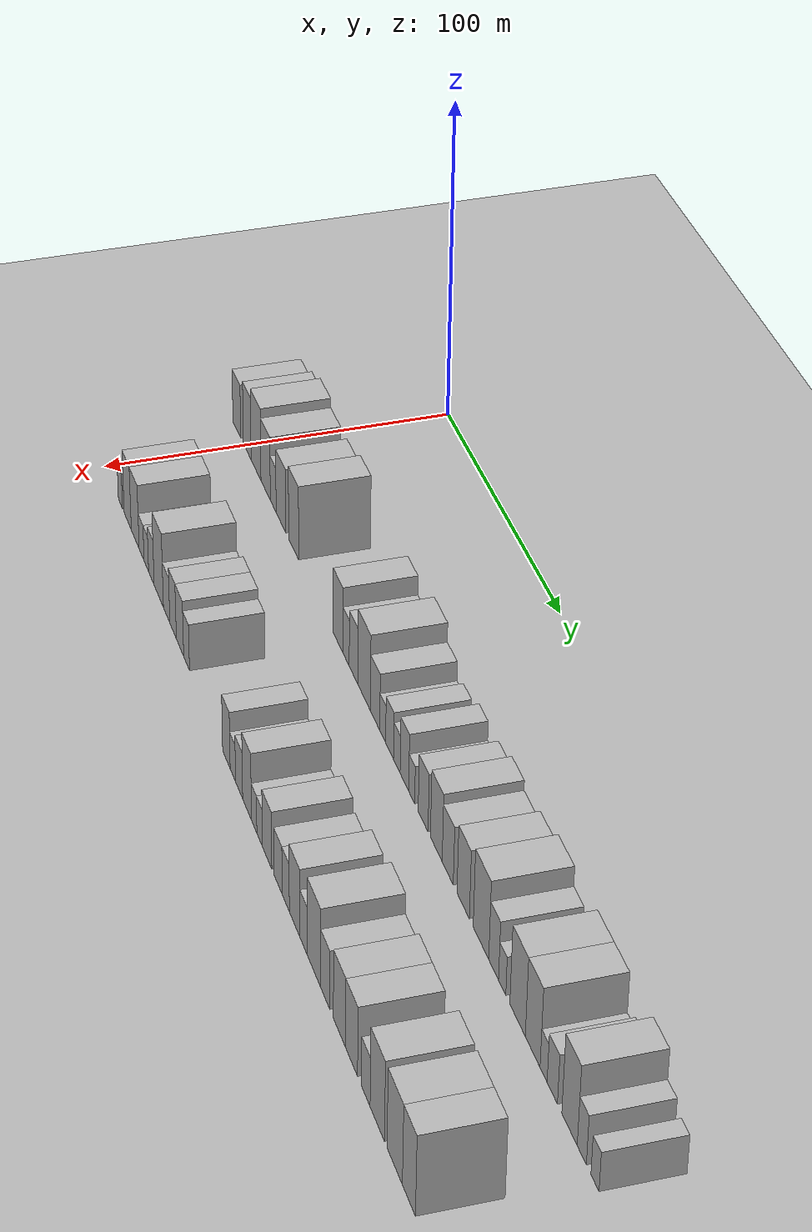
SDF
<sdf version="1.6">
 <world name="default">
  <include><name>ground_plane_1</name><uri>model://HANNAS_ground_plane</uri></include>
  <include>
   <name>ground_plane_2</name>
   <uri>model://HANNAS_ground_plane</uri>
   <pose>100 0 0  0 0 0</pose>
  </include>
  <model name="building_27">
   <static>1</static>
   <pose>50.0000 -7.8816 0 0.000000 0.000000 0.000000</pose>
   <link name="link">
    <pose>0 0 9.00 0 0 0</pose>
    <collision name="collision"><geometry><box><size>20.0000 8.7975 18.0000</size></box></geometry></collision>
    <visual name="visual">
     <cast_shadows>0</cast_shadows>
     <geometry><box><size>20.0000 8.7975 18.0000</size></box></geometry>
     <material>
      <script>
       <uri>model://HANNAS_wall/materials/scripts</uri>
       <uri>model://HANNAS_wall/materials/textures</uri>
       <name>vrc/HANNAS_wall</name>
      </script>
     </material>
    </visual>
   </link>
  </model>
  <model name="building_28">
   <static>1</static>
   <pose>50.0000 3.8579 0 0.000000 0.000000 0.000000</pose>
   <link name="link">
    <pose>0 0 10.50 0 0 0</pose>
    <collision name="collision"><geometry><box><size>20.0000 8.6814 21.0000</size></box></geometry></collision>
    <visual name="visual">
     <cast_shadows>0</cast_shadows>
     <geometry><box><size>20.0000 8.6814 21.0000</size></box></geometry>
     <material>
      <script>
       <uri>model://HANNAS_wall/materials/scripts</uri>
       <uri>model://HANNAS_wall/materials/textures</uri>
       <name>vrc/HANNAS_wall</name>
      </script>
     </material>
    </visual>
   </link>
  </model>
  <model name="building_29">
   <static>1</static>
   <pose>50.0000 13.5751 0 0.000000 0.000000 0.000000</pose>
   <link name="link">
    <pose>0 0 12.00 0 0 0</pose>
    <collision name="collision"><geometry><box><size>20.0000 10.7529 24.0000</size></box></geometry></collision>
    <visual name="visual">
     <cast_shadows>0</cast_shadows>
     <geometry><box><size>20.0000 10.7529 24.0000</size></box></geometry>
     <material>
      <script>
       <uri>model://HANNAS_wall/materials/scripts</uri>
       <uri>model://HANNAS_wall/materials/textures</uri>
       <name>vrc/HANNAS_wall</name>
      </script>
     </material>
    </visual>
   </link>
  </model>
  <model name="building_30">
   <static>1</static>
   <pose>50.0000 24.0050 0 0.000000 0.000000 0.000000</pose>
   <link name="link">
    <pose>0 0 10.50 0 0 0</pose>
    <collision name="collision"><geometry><box><size>20.0000 10.1068 21.0000</size></box></geometry></collision>
    <visual name="visual">
     <cast_shadows>0</cast_shadows>
     <geometry><box><size>20.0000 10.1068 21.0000</size></box></geometry>
     <material>
      <script>
       <uri>model://HANNAS_wall/materials/scripts</uri>
       <uri>model://HANNAS_wall/materials/textures</uri>
       <name>vrc/HANNAS_wall</name>
      </script>
     </material>
    </visual>
   </link>
  </model>
  <model name="building_31">
   <static>1</static>
   <pose>50.0000 32.1459 0 0.000000 0.000000 0.000000</pose>
   <link name="link">
    <pose>0 0 7.50 0 0 0</pose>
    <collision name="collision"><geometry><box><size>20.0000 6.1750 15.0000</size></box></geometry></collision>
    <visual name="visual">
     <cast_shadows>0</cast_shadows>
     <geometry><box><size>20.0000 6.1750 15.0000</size></box></geometry>
     <material>
      <script>
       <uri>model://HANNAS_wall/materials/scripts</uri>
       <uri>model://HANNAS_wall/materials/textures</uri>
       <name>vrc/HANNAS_wall</name>
      </script>
     </material>
    </visual>
   </link>
  </model>
  <model name="building_32">
   <static>1</static>
   <pose>50.0000 40.3316 0 0.000000 0.000000 0.000000</pose>
   <link name="link">
    <pose>0 0 10.50 0 0 0</pose>
    <collision name="collision"><geometry><box><size>20.0000 10.1965 21.0000</size></box></geometry></collision>
    <visual name="visual">
     <cast_shadows>0</cast_shadows>
     <geometry><box><size>20.0000 10.1965 21.0000</size></box></geometry>
     <material>
      <script>
       <uri>model://HANNAS_wall/materials/scripts</uri>
       <uri>model://HANNAS_wall/materials/textures</uri>
       <name>vrc/HANNAS_wall</name>
      </script>
     </material>
    </visual>
   </link>
  </model>
  <model name="building_33">
   <static>1</static>
   <pose>50.0000 53.5483 0 0.000000 0.000000 0.000000</pose>
   <link name="link">
    <pose>0 0 12.00 0 0 0</pose>
    <collision name="collision"><geometry><box><size>20.0000 10.2368 24.0000</size></box></geometry></collision>
    <visual name="visual">
     <cast_shadows>0</cast_shadows>
     <geometry><box><size>20.0000 10.2368 24.0000</size></box></geometry>
     <material>
      <script>
       <uri>model://HANNAS_wall/materials/scripts</uri>
       <uri>model://HANNAS_wall/materials/textures</uri>
       <name>vrc/HANNAS_wall</name>
      </script>
     </material>
    </visual>
   </link>
  </model>
  <model name="building_34">
   <static>1</static>
   <pose>50.0000 97.4799 0 0.000000 0.000000 0.000000</pose>
   <link name="link">
    <pose>0 0 10.50 0 0 0</pose>
    <collision name="collision"><geometry><box><size>20.0000 9.2088 21.0000</size></box></geometry></collision>
    <visual name="visual">
     <cast_shadows>0</cast_shadows>
     <geometry><box><size>20.0000 9.2088 21.0000</size></box></geometry>
     <material>
      <script>
       <uri>model://HANNAS_wall/materials/scripts</uri>
       <uri>model://HANNAS_wall/materials/textures</uri>
       <name>vrc/HANNAS_wall</name>
      </script>
     </material>
    </visual>
   </link>
  </model>
  <model name="building_35">
   <static>1</static>
   <pose>50.0000 105.1145 0 0.000000 0.000000 0.000000</pose>
   <link name="link">
    <pose>0 0 7.50 0 0 0</pose>
    <collision name="collision"><geometry><box><size>20.0000 6.0606 15.0000</size></box></geometry></collision>
    <visual name="visual">
     <cast_shadows>0</cast_shadows>
     <geometry><box><size>20.0000 6.0606 15.0000</size></box></geometry>
     <material>
      <script>
       <uri>model://HANNAS_wall/materials/scripts</uri>
       <uri>model://HANNAS_wall/materials/textures</uri>
       <name>vrc/HANNAS_wall</name>
      </script>
     </material>
    </visual>
   </link>
  </model>
  <model name="building_36">
   <static>1</static>
   <pose>50.0000 112.1290 0 0.000000 0.000000 0.000000</pose>
   <link name="link">
    <pose>0 0 9.00 0 0 0</pose>
    <collision name="collision"><geometry><box><size>20.0000 7.9685 18.0000</size></box></geometry></collision>
    <visual name="visual">
     <cast_shadows>0</cast_shadows>
     <geometry><box><size>20.0000 7.9685 18.0000</size></box></geometry>
     <material>
      <script>
       <uri>model://HANNAS_wall/materials/scripts</uri>
       <uri>model://HANNAS_wall/materials/textures</uri>
       <name>vrc/HANNAS_wall</name>
      </script>
     </material>
    </visual>
   </link>
  </model>
  <model name="building_37">
   <static>1</static>
   <pose>50.0000 121.8683 0 0.000000 0.000000 0.000000</pose>
   <link name="link">
    <pose>0 0 12.00 0 0 0</pose>
    <collision name="collision"><geometry><box><size>20.0000 11.5101 24.0000</size></box></geometry></collision>
    <visual name="visual">
     <cast_shadows>0</cast_shadows>
     <geometry><box><size>20.0000 11.5101 24.0000</size></box></geometry>
     <material>
      <script>
       <uri>model://HANNAS_wall/materials/scripts</uri>
       <uri>model://HANNAS_wall/materials/textures</uri>
       <name>vrc/HANNAS_wall</name>
      </script>
     </material>
    </visual>
   </link>
  </model>
  <model name="building_38">
   <static>1</static>
   <pose>50.0000 131.8711 0 0.000000 0.000000 0.000000</pose>
   <link name="link">
    <pose>0 0 9.00 0 0 0</pose>
    <collision name="collision"><geometry><box><size>20.0000 8.4955 18.0000</size></box></geometry></collision>
    <visual name="visual">
     <cast_shadows>0</cast_shadows>
     <geometry><box><size>20.0000 8.4955 18.0000</size></box></geometry>
     <material>
      <script>
       <uri>model://HANNAS_wall/materials/scripts</uri>
       <uri>model://HANNAS_wall/materials/textures</uri>
       <name>vrc/HANNAS_wall</name>
      </script>
     </material>
    </visual>
   </link>
  </model>
  <model name="building_39">
   <static>1</static>
   <pose>50.0000 138.7568 0 0.000000 0.000000 0.000000</pose>
   <link name="link">
    <pose>0 0 6.00 0 0 0</pose>
    <collision name="collision"><geometry><box><size>20.0000 5.2759 12.0000</size></box></geometry></collision>
    <visual name="visual">
     <cast_shadows>0</cast_shadows>
     <geometry><box><size>20.0000 5.2759 12.0000</size></box></geometry>
     <material>
      <script>
       <uri>model://HANNAS_wall/materials/scripts</uri>
       <uri>model://HANNAS_wall/materials/textures</uri>
       <name>vrc/HANNAS_wall</name>
      </script>
     </material>
    </visual>
   </link>
  </model>
  <model name="building_40">
   <static>1</static>
   <pose>50.0000 144.8671 0 0.000000 0.000000 0.000000</pose>
   <link name="link">
    <pose>0 0 7.50 0 0 0</pose>
    <collision name="collision"><geometry><box><size>20.0000 6.9448 15.0000</size></box></geometry></collision>
    <visual name="visual">
     <cast_shadows>0</cast_shadows>
     <geometry><box><size>20.0000 6.9448 15.0000</size></box></geometry>
     <material>
      <script>
       <uri>model://HANNAS_wall/materials/scripts</uri>
       <uri>model://HANNAS_wall/materials/textures</uri>
       <name>vrc/HANNAS_wall</name>
      </script>
     </material>
    </visual>
   </link>
  </model>
  <model name="building_41">
   <static>1</static>
   <pose>50.0000 151.2323 0 0.000000 0.000000 0.000000</pose>
   <link name="link">
    <pose>0 0 6.00 0 0 0</pose>
    <collision name="collision"><geometry><box><size>20.0000 5.7856 12.0000</size></box></geometry></collision>
    <visual name="visual">
     <cast_shadows>0</cast_shadows>
     <geometry><box><size>20.0000 5.7856 12.0000</size></box></geometry>
     <material>
      <script>
       <uri>model://HANNAS_wall/materials/scripts</uri>
       <uri>model://HANNAS_wall/materials/textures</uri>
       <name>vrc/HANNAS_wall</name>
      </script>
     </material>
    </visual>
   </link>
  </model>
  <model name="building_42">
   <static>1</static>
   <pose>50.0000 157.7852 0 0.000000 0.000000 0.000000</pose>
   <link name="link">
    <pose>0 0 9.00 0 0 0</pose>
    <collision name="collision"><geometry><box><size>20.0000 7.3201 18.0000</size></box></geometry></collision>
    <visual name="visual">
     <cast_shadows>0</cast_shadows>
     <geometry><box><size>20.0000 7.3201 18.0000</size></box></geometry>
     <material>
      <script>
       <uri>model://HANNAS_wall/materials/scripts</uri>
       <uri>model://HANNAS_wall/materials/textures</uri>
       <name>vrc/HANNAS_wall</name>
      </script>
     </material>
    </visual>
   </link>
  </model>
  <model name="building_43">
   <static>1</static>
   <pose>50.0000 164.0114 0 0.000000 0.000000 0.000000</pose>
   <link name="link">
    <pose>0 0 6.00 0 0 0</pose>
    <collision name="collision"><geometry><box><size>20.0000 5.1324 12.0000</size></box></geometry></collision>
    <visual name="visual">
     <cast_shadows>0</cast_shadows>
     <geometry><box><size>20.0000 5.1324 12.0000</size></box></geometry>
     <material>
      <script>
       <uri>model://HANNAS_wall/materials/scripts</uri>
       <uri>model://HANNAS_wall/materials/textures</uri>
       <name>vrc/HANNAS_wall</name>
      </script>
     </material>
    </visual>
   </link>
  </model>
  <model name="building_44">
   <static>1</static>
   <pose>50.0000 173.6840 0 0.000000 0.000000 0.000000</pose>
   <link name="link">
    <pose>0 0 9.00 0 0 0</pose>
    <collision name="collision"><geometry><box><size>20.0000 8.2128 18.0000</size></box></geometry></collision>
    <visual name="visual">
     <cast_shadows>0</cast_shadows>
     <geometry><box><size>20.0000 8.2128 18.0000</size></box></geometry>
     <material>
      <script>
       <uri>model://HANNAS_wall/materials/scripts</uri>
       <uri>model://HANNAS_wall/materials/textures</uri>
       <name>vrc/HANNAS_wall</name>
      </script>
     </material>
    </visual>
   </link>
  </model>
  <model name="building_45">
   <static>1</static>
   <pose>50.0000 184.6107 0 0.000000 0.000000 0.000000</pose>
   <link name="link">
    <pose>0 0 10.50 0 0 0</pose>
    <collision name="collision"><geometry><box><size>20.0000 9.6407 21.0000</size></box></geometry></collision>
    <visual name="visual">
     <cast_shadows>0</cast_shadows>
     <geometry><box><size>20.0000 9.6407 21.0000</size></box></geometry>
     <material>
      <script>
       <uri>model://HANNAS_wall/materials/scripts</uri>
       <uri>model://HANNAS_wall/materials/textures</uri>
       <name>vrc/HANNAS_wall</name>
      </script>
     </material>
    </visual>
   </link>
  </model>
  <model name="building_46">
   <static>1</static>
   <pose>50.0000 193.9039 0 0.000000 0.000000 0.000000</pose>
   <link name="link">
    <pose>0 0 9.00 0 0 0</pose>
    <collision name="collision"><geometry><box><size>20.0000 8.9455 18.0000</size></box></geometry></collision>
    <visual name="visual">
     <cast_shadows>0</cast_shadows>
     <geometry><box><size>20.0000 8.9455 18.0000</size></box></geometry>
     <material>
      <script>
       <uri>model://HANNAS_wall/materials/scripts</uri>
       <uri>model://HANNAS_wall/materials/textures</uri>
       <name>vrc/HANNAS_wall</name>
      </script>
     </material>
    </visual>
   </link>
  </model>
  <model name="building_47">
   <static>1</static>
   <pose>50.0000 206.2515 0 0.000000 0.000000 0.000000</pose>
   <link name="link">
    <pose>0 0 10.50 0 0 0</pose>
    <collision name="collision"><geometry><box><size>20.0000 9.7498 21.0000</size></box></geometry></collision>
    <visual name="visual">
     <cast_shadows>0</cast_shadows>
     <geometry><box><size>20.0000 9.7498 21.0000</size></box></geometry>
     <material>
      <script>
       <uri>model://HANNAS_wall/materials/scripts</uri>
       <uri>model://HANNAS_wall/materials/textures</uri>
       <name>vrc/HANNAS_wall</name>
      </script>
     </material>
    </visual>
   </link>
  </model>
  <model name="building_48">
   <static>1</static>
   <pose>50.0000 220.0855 0 0.000000 0.000000 0.000000</pose>
   <link name="link">
    <pose>0 0 12.00 0 0 0</pose>
    <collision name="collision"><geometry><box><size>20.0000 11.9182 24.0000</size></box></geometry></collision>
    <visual name="visual">
     <cast_shadows>0</cast_shadows>
     <geometry><box><size>20.0000 11.9182 24.0000</size></box></geometry>
     <material>
      <script>
       <uri>model://HANNAS_wall/materials/scripts</uri>
       <uri>model://HANNAS_wall/materials/textures</uri>
       <name>vrc/HANNAS_wall</name>
      </script>
     </material>
    </visual>
   </link>
  </model>
  <model name="building_49">
   <static>1</static>
   <pose>50.0000 229.7519 0 0.000000 0.000000 0.000000</pose>
   <link name="link">
    <pose>0 0 9.00 0 0 0</pose>
    <collision name="collision"><geometry><box><size>20.0000 7.4147 18.0000</size></box></geometry></collision>
    <visual name="visual">
     <cast_shadows>0</cast_shadows>
     <geometry><box><size>20.0000 7.4147 18.0000</size></box></geometry>
     <material>
      <script>
       <uri>model://HANNAS_wall/materials/scripts</uri>
       <uri>model://HANNAS_wall/materials/textures</uri>
       <name>vrc/HANNAS_wall</name>
      </script>
     </material>
    </visual>
   </link>
  </model>
  <model name="building_50">
   <static>1</static>
   <pose>50.0000 236.1665 0 0.000000 0.000000 0.000000</pose>
   <link name="link">
    <pose>0 0 6.00 0 0 0</pose>
    <collision name="collision"><geometry><box><size>20.0000 5.4144 12.0000</size></box></geometry></collision>
    <visual name="visual">
     <cast_shadows>0</cast_shadows>
     <geometry><box><size>20.0000 5.4144 12.0000</size></box></geometry>
     <material>
      <script>
       <uri>model://HANNAS_wall/materials/scripts</uri>
       <uri>model://HANNAS_wall/materials/textures</uri>
       <name>vrc/HANNAS_wall</name>
      </script>
     </material>
    </visual>
   </link>
  </model>
  <model name="building_51">
   <static>1</static>
   <pose>50.0000 247.5233 0 0.000000 0.000000 0.000000</pose>
   <link name="link">
    <pose>0 0 12.00 0 0 0</pose>
    <collision name="collision"><geometry><box><size>20.0000 11.2993 24.0000</size></box></geometry></collision>
    <visual name="visual">
     <cast_shadows>0</cast_shadows>
     <geometry><box><size>20.0000 11.2993 24.0000</size></box></geometry>
     <material>
      <script>
       <uri>model://HANNAS_wall/materials/scripts</uri>
       <uri>model://HANNAS_wall/materials/textures</uri>
       <name>vrc/HANNAS_wall</name>
      </script>
     </material>
    </visual>
   </link>
  </model>
  <model name="building_52">
   <static>1</static>
   <pose>50.0000 258.4400 0 0.000000 0.000000 0.000000</pose>
   <link name="link">
    <pose>0 0 12.00 0 0 0</pose>
    <collision name="collision"><geometry><box><size>20.0000 10.5341 24.0000</size></box></geometry></collision>
    <visual name="visual">
     <cast_shadows>0</cast_shadows>
     <geometry><box><size>20.0000 10.5341 24.0000</size></box></geometry>
     <material>
      <script>
       <uri>model://HANNAS_wall/materials/scripts</uri>
       <uri>model://HANNAS_wall/materials/textures</uri>
       <name>vrc/HANNAS_wall</name>
      </script>
     </material>
    </visual>
   </link>
  </model>
  <model name="building_53">
   <static>1</static>
   <pose>50.0000 266.1904 0 0.000000 0.000000 0.000000</pose>
   <link name="link">
    <pose>0 0 6.00 0 0 0</pose>
    <collision name="collision"><geometry><box><size>20.0000 4.9665 12.0000</size></box></geometry></collision>
    <visual name="visual">
     <cast_shadows>0</cast_shadows>
     <geometry><box><size>20.0000 4.9665 12.0000</size></box></geometry>
     <material>
      <script>
       <uri>model://HANNAS_wall/materials/scripts</uri>
       <uri>model://HANNAS_wall/materials/textures</uri>
       <name>vrc/HANNAS_wall</name>
      </script>
     </material>
    </visual>
   </link>
  </model>
  <model name="building_54">
   <static>1</static>
   <pose>50.0000 272.2597 0 0.000000 0.000000 0.000000</pose>
   <link name="link">
    <pose>0 0 7.50 0 0 0</pose>
    <collision name="collision"><geometry><box><size>20.0000 7.1720 15.0000</size></box></geometry></collision>
    <visual name="visual">
     <cast_shadows>0</cast_shadows>
     <geometry><box><size>20.0000 7.1720 15.0000</size></box></geometry>
     <material>
      <script>
       <uri>model://HANNAS_wall/materials/scripts</uri>
       <uri>model://HANNAS_wall/materials/textures</uri>
       <name>vrc/HANNAS_wall</name>
      </script>
     </material>
    </visual>
   </link>
  </model>
  <model name="building_55">
   <static>1</static>
   <pose>50.0000 284.0848 0 0.000000 0.000000 0.000000</pose>
   <link name="link">
    <pose>0 0 12.00 0 0 0</pose>
    <collision name="collision"><geometry><box><size>20.0000 10.4783 24.0000</size></box></geometry></collision>
    <visual name="visual">
     <cast_shadows>0</cast_shadows>
     <geometry><box><size>20.0000 10.4783 24.0000</size></box></geometry>
     <material>
      <script>
       <uri>model://HANNAS_wall/materials/scripts</uri>
       <uri>model://HANNAS_wall/materials/textures</uri>
       <name>vrc/HANNAS_wall</name>
      </script>
     </material>
    </visual>
   </link>
  </model>
  <model name="building_56">
   <static>1</static>
   <pose>50.0000 292.3729 0 0.000000 0.000000 0.000000</pose>
   <link name="link">
    <pose>0 0 7.50 0 0 0</pose>
    <collision name="collision"><geometry><box><size>20.0000 6.0980 15.0000</size></box></geometry></collision>
    <visual name="visual">
     <cast_shadows>0</cast_shadows>
     <geometry><box><size>20.0000 6.0980 15.0000</size></box></geometry>
     <material>
      <script>
       <uri>model://HANNAS_wall/materials/scripts</uri>
       <uri>model://HANNAS_wall/materials/textures</uri>
       <name>vrc/HANNAS_wall</name>
      </script>
     </material>
    </visual>
   </link>
  </model>
  <model name="building_57">
   <static>1</static>
   <pose>50.0000 301.0905 0 0.000000 0.000000 0.000000</pose>
   <link name="link">
    <pose>0 0 6.00 0 0 0</pose>
    <collision name="collision"><geometry><box><size>20.0000 5.3371 12.0000</size></box></geometry></collision>
    <visual name="visual">
     <cast_shadows>0</cast_shadows>
     <geometry><box><size>20.0000 5.3371 12.0000</size></box></geometry>
     <material>
      <script>
       <uri>model://HANNAS_wall/materials/scripts</uri>
       <uri>model://HANNAS_wall/materials/textures</uri>
       <name>vrc/HANNAS_wall</name>
      </script>
     </material>
    </visual>
   </link>
  </model>
  <model name="building_93">
   <static>1</static>
   <pose>90.0000 19.8070 0 0.000000 0.000000 0.000000</pose>
   <link name="link">
    <pose>0 0 6.00 0 0 0</pose>
    <collision name="collision"><geometry><box><size>20.0000 5.0939 12.0000</size></box></geometry></collision>
    <visual name="visual">
     <cast_shadows>0</cast_shadows>
     <geometry><box><size>20.0000 5.0939 12.0000</size></box></geometry>
     <material>
      <script>
       <uri>model://HANNAS_wall/materials/scripts</uri>
       <uri>model://HANNAS_wall/materials/textures</uri>
       <name>vrc/HANNAS_wall</name>
      </script>
     </material>
    </visual>
   </link>
  </model>
  <model name="building_94">
   <static>1</static>
   <pose>90.0000 28.6497 0 0.000000 0.000000 0.000000</pose>
   <link name="link">
    <pose>0 0 10.50 0 0 0</pose>
    <collision name="collision"><geometry><box><size>20.0000 8.5916 21.0000</size></box></geometry></collision>
    <visual name="visual">
     <cast_shadows>0</cast_shadows>
     <geometry><box><size>20.0000 8.5916 21.0000</size></box></geometry>
     <material>
      <script>
       <uri>model://HANNAS_wall/materials/scripts</uri>
       <uri>model://HANNAS_wall/materials/textures</uri>
       <name>vrc/HANNAS_wall</name>
      </script>
     </material>
    </visual>
   </link>
  </model>
  <model name="building_95">
   <static>1</static>
   <pose>90.0000 37.6265 0 0.000000 0.000000 0.000000</pose>
   <link name="link">
    <pose>0 0 10.50 0 0 0</pose>
    <collision name="collision"><geometry><box><size>20.0000 9.3620 21.0000</size></box></geometry></collision>
    <visual name="visual">
     <cast_shadows>0</cast_shadows>
     <geometry><box><size>20.0000 9.3620 21.0000</size></box></geometry>
     <material>
      <script>
       <uri>model://HANNAS_wall/materials/scripts</uri>
       <uri>model://HANNAS_wall/materials/textures</uri>
       <name>vrc/HANNAS_wall</name>
      </script>
     </material>
    </visual>
   </link>
  </model>
  <model name="building_96">
   <static>1</static>
   <pose>90.0000 45.2071 0 0.000000 0.000000 0.000000</pose>
   <link name="link">
    <pose>0 0 6.00 0 0 0</pose>
    <collision name="collision"><geometry><box><size>20.0000 5.7991 12.0000</size></box></geometry></collision>
    <visual name="visual">
     <cast_shadows>0</cast_shadows>
     <geometry><box><size>20.0000 5.7991 12.0000</size></box></geometry>
     <material>
      <script>
       <uri>model://HANNAS_wall/materials/scripts</uri>
       <uri>model://HANNAS_wall/materials/textures</uri>
       <name>vrc/HANNAS_wall</name>
      </script>
     </material>
    </visual>
   </link>
  </model>
  <model name="building_97">
   <static>1</static>
   <pose>90.0000 50.7437 0 0.000000 0.000000 0.000000</pose>
   <link name="link">
    <pose>0 0 6.00 0 0 0</pose>
    <collision name="collision"><geometry><box><size>20.0000 5.2741 12.0000</size></box></geometry></collision>
    <visual name="visual">
     <cast_shadows>0</cast_shadows>
     <geometry><box><size>20.0000 5.2741 12.0000</size></box></geometry>
     <material>
      <script>
       <uri>model://HANNAS_wall/materials/scripts</uri>
       <uri>model://HANNAS_wall/materials/textures</uri>
       <name>vrc/HANNAS_wall</name>
      </script>
     </material>
    </visual>
   </link>
  </model>
  <model name="building_98">
   <static>1</static>
   <pose>90.0000 56.6018 0 0.000000 0.000000 0.000000</pose>
   <link name="link">
    <pose>0 0 7.50 0 0 0</pose>
    <collision name="collision"><geometry><box><size>20.0000 6.4421 15.0000</size></box></geometry></collision>
    <visual name="visual">
     <cast_shadows>0</cast_shadows>
     <geometry><box><size>20.0000 6.4421 15.0000</size></box></geometry>
     <material>
      <script>
       <uri>model://HANNAS_wall/materials/scripts</uri>
       <uri>model://HANNAS_wall/materials/textures</uri>
       <name>vrc/HANNAS_wall</name>
      </script>
     </material>
    </visual>
   </link>
  </model>
  <model name="building_99">
   <static>1</static>
   <pose>90.0000 65.1046 0 0.000000 0.000000 0.000000</pose>
   <link name="link">
    <pose>0 0 12.00 0 0 0</pose>
    <collision name="collision"><geometry><box><size>20.0000 10.5635 24.0000</size></box></geometry></collision>
    <visual name="visual">
     <cast_shadows>0</cast_shadows>
     <geometry><box><size>20.0000 10.5635 24.0000</size></box></geometry>
     <material>
      <script>
       <uri>model://HANNAS_wall/materials/scripts</uri>
       <uri>model://HANNAS_wall/materials/textures</uri>
       <name>vrc/HANNAS_wall</name>
      </script>
     </material>
    </visual>
   </link>
  </model>
  <model name="building_100">
   <static>1</static>
   <pose>90.0000 73.9762 0 0.000000 0.000000 0.000000</pose>
   <link name="link">
    <pose>0 0 7.50 0 0 0</pose>
    <collision name="collision"><geometry><box><size>20.0000 7.1796 15.0000</size></box></geometry></collision>
    <visual name="visual">
     <cast_shadows>0</cast_shadows>
     <geometry><box><size>20.0000 7.1796 15.0000</size></box></geometry>
     <material>
      <script>
       <uri>model://HANNAS_wall/materials/scripts</uri>
       <uri>model://HANNAS_wall/materials/textures</uri>
       <name>vrc/HANNAS_wall</name>
      </script>
     </material>
    </visual>
   </link>
  </model>
  <model name="building_101">
   <static>1</static>
   <pose>90.0000 81.1669 0 0.000000 0.000000 0.000000</pose>
   <link name="link">
    <pose>0 0 9.00 0 0 0</pose>
    <collision name="collision"><geometry><box><size>20.0000 7.2018 18.0000</size></box></geometry></collision>
    <visual name="visual">
     <cast_shadows>0</cast_shadows>
     <geometry><box><size>20.0000 7.2018 18.0000</size></box></geometry>
     <material>
      <script>
       <uri>model://HANNAS_wall/materials/scripts</uri>
       <uri>model://HANNAS_wall/materials/textures</uri>
       <name>vrc/HANNAS_wall</name>
      </script>
     </material>
    </visual>
   </link>
  </model>
  <model name="building_102">
   <static>1</static>
   <pose>90.0000 88.7827 0 0.000000 0.000000 0.000000</pose>
   <link name="link">
    <pose>0 0 9.00 0 0 0</pose>
    <collision name="collision"><geometry><box><size>20.0000 8.0298 18.0000</size></box></geometry></collision>
    <visual name="visual">
     <cast_shadows>0</cast_shadows>
     <geometry><box><size>20.0000 8.0298 18.0000</size></box></geometry>
     <material>
      <script>
       <uri>model://HANNAS_wall/materials/scripts</uri>
       <uri>model://HANNAS_wall/materials/textures</uri>
       <name>vrc/HANNAS_wall</name>
      </script>
     </material>
    </visual>
   </link>
  </model>
  <model name="building_103">
   <static>1</static>
   <pose>90.0000 95.9546 0 0.000000 0.000000 0.000000</pose>
   <link name="link">
    <pose>0 0 7.50 0 0 0</pose>
    <collision name="collision"><geometry><box><size>20.0000 6.3139 15.0000</size></box></geometry></collision>
    <visual name="visual">
     <cast_shadows>0</cast_shadows>
     <geometry><box><size>20.0000 6.3139 15.0000</size></box></geometry>
     <material>
      <script>
       <uri>model://HANNAS_wall/materials/scripts</uri>
       <uri>model://HANNAS_wall/materials/textures</uri>
       <name>vrc/HANNAS_wall</name>
      </script>
     </material>
    </visual>
   </link>
  </model>
  <model name="building_104">
   <static>1</static>
   <pose>90.0000 137.4389 0 0.000000 0.000000 0.000000</pose>
   <link name="link">
    <pose>0 0 9.00 0 0 0</pose>
    <collision name="collision"><geometry><box><size>20.0000 7.5516 18.0000</size></box></geometry></collision>
    <visual name="visual">
     <cast_shadows>0</cast_shadows>
     <geometry><box><size>20.0000 7.5516 18.0000</size></box></geometry>
     <material>
      <script>
       <uri>model://HANNAS_wall/materials/scripts</uri>
       <uri>model://HANNAS_wall/materials/textures</uri>
       <name>vrc/HANNAS_wall</name>
      </script>
     </material>
    </visual>
   </link>
  </model>
  <model name="building_105">
   <static>1</static>
   <pose>90.0000 143.9240 0 0.000000 0.000000 0.000000</pose>
   <link name="link">
    <pose>0 0 6.00 0 0 0</pose>
    <collision name="collision"><geometry><box><size>20.0000 5.4185 12.0000</size></box></geometry></collision>
    <visual name="visual">
     <cast_shadows>0</cast_shadows>
     <geometry><box><size>20.0000 5.4185 12.0000</size></box></geometry>
     <material>
      <script>
       <uri>model://HANNAS_wall/materials/scripts</uri>
       <uri>model://HANNAS_wall/materials/textures</uri>
       <name>vrc/HANNAS_wall</name>
      </script>
     </material>
    </visual>
   </link>
  </model>
  <model name="building_106">
   <static>1</static>
   <pose>90.0000 150.1051 0 0.000000 0.000000 0.000000</pose>
   <link name="link">
    <pose>0 0 7.50 0 0 0</pose>
    <collision name="collision"><geometry><box><size>20.0000 6.9438 15.0000</size></box></geometry></collision>
    <visual name="visual">
     <cast_shadows>0</cast_shadows>
     <geometry><box><size>20.0000 6.9438 15.0000</size></box></geometry>
     <material>
      <script>
       <uri>model://HANNAS_wall/materials/scripts</uri>
       <uri>model://HANNAS_wall/materials/textures</uri>
       <name>vrc/HANNAS_wall</name>
      </script>
     </material>
    </visual>
   </link>
  </model>
  <model name="building_107">
   <static>1</static>
   <pose>90.0000 157.8652 0 0.000000 0.000000 0.000000</pose>
   <link name="link">
    <pose>0 0 10.50 0 0 0</pose>
    <collision name="collision"><geometry><box><size>20.0000 8.5762 21.0000</size></box></geometry></collision>
    <visual name="visual">
     <cast_shadows>0</cast_shadows>
     <geometry><box><size>20.0000 8.5762 21.0000</size></box></geometry>
     <material>
      <script>
       <uri>model://HANNAS_wall/materials/scripts</uri>
       <uri>model://HANNAS_wall/materials/textures</uri>
       <name>vrc/HANNAS_wall</name>
      </script>
     </material>
    </visual>
   </link>
  </model>
  <model name="building_108">
   <static>1</static>
   <pose>90.0000 164.7117 0 0.000000 0.000000 0.000000</pose>
   <link name="link">
    <pose>0 0 6.00 0 0 0</pose>
    <collision name="collision"><geometry><box><size>20.0000 5.1168 12.0000</size></box></geometry></collision>
    <visual name="visual">
     <cast_shadows>0</cast_shadows>
     <geometry><box><size>20.0000 5.1168 12.0000</size></box></geometry>
     <material>
      <script>
       <uri>model://HANNAS_wall/materials/scripts</uri>
       <uri>model://HANNAS_wall/materials/textures</uri>
       <name>vrc/HANNAS_wall</name>
      </script>
     </material>
    </visual>
   </link>
  </model>
  <model name="building_109">
   <static>1</static>
   <pose>90.0000 169.8876 0 0.000000 0.000000 0.000000</pose>
   <link name="link">
    <pose>0 0 6.00 0 0 0</pose>
    <collision name="collision"><geometry><box><size>20.0000 5.2351 12.0000</size></box></geometry></collision>
    <visual name="visual">
     <cast_shadows>0</cast_shadows>
     <geometry><box><size>20.0000 5.2351 12.0000</size></box></geometry>
     <material>
      <script>
       <uri>model://HANNAS_wall/materials/scripts</uri>
       <uri>model://HANNAS_wall/materials/textures</uri>
       <name>vrc/HANNAS_wall</name>
      </script>
     </material>
    </visual>
   </link>
  </model>
  <model name="building_110">
   <static>1</static>
   <pose>90.0000 176.9263 0 0.000000 0.000000 0.000000</pose>
   <link name="link">
    <pose>0 0 9.00 0 0 0</pose>
    <collision name="collision"><geometry><box><size>20.0000 8.8425 18.0000</size></box></geometry></collision>
    <visual name="visual">
     <cast_shadows>0</cast_shadows>
     <geometry><box><size>20.0000 8.8425 18.0000</size></box></geometry>
     <material>
      <script>
       <uri>model://HANNAS_wall/materials/scripts</uri>
       <uri>model://HANNAS_wall/materials/textures</uri>
       <name>vrc/HANNAS_wall</name>
      </script>
     </material>
    </visual>
   </link>
  </model>
  <model name="building_111">
   <static>1</static>
   <pose>90.0000 187.0968 0 0.000000 0.000000 0.000000</pose>
   <link name="link">
    <pose>0 0 7.50 0 0 0</pose>
    <collision name="collision"><geometry><box><size>20.0000 7.4985 15.0000</size></box></geometry></collision>
    <visual name="visual">
     <cast_shadows>0</cast_shadows>
     <geometry><box><size>20.0000 7.4985 15.0000</size></box></geometry>
     <material>
      <script>
       <uri>model://HANNAS_wall/materials/scripts</uri>
       <uri>model://HANNAS_wall/materials/textures</uri>
       <name>vrc/HANNAS_wall</name>
      </script>
     </material>
    </visual>
   </link>
  </model>
  <model name="building_112">
   <static>1</static>
   <pose>90.0000 194.1438 0 0.000000 0.000000 0.000000</pose>
   <link name="link">
    <pose>0 0 7.50 0 0 0</pose>
    <collision name="collision"><geometry><box><size>20.0000 6.5956 15.0000</size></box></geometry></collision>
    <visual name="visual">
     <cast_shadows>0</cast_shadows>
     <geometry><box><size>20.0000 6.5956 15.0000</size></box></geometry>
     <material>
      <script>
       <uri>model://HANNAS_wall/materials/scripts</uri>
       <uri>model://HANNAS_wall/materials/textures</uri>
       <name>vrc/HANNAS_wall</name>
      </script>
     </material>
    </visual>
   </link>
  </model>
  <model name="building_113">
   <static>1</static>
   <pose>90.0000 202.2018 0 0.000000 0.000000 0.000000</pose>
   <link name="link">
    <pose>0 0 10.50 0 0 0</pose>
    <collision name="collision"><geometry><box><size>20.0000 9.5205 21.0000</size></box></geometry></collision>
    <visual name="visual">
     <cast_shadows>0</cast_shadows>
     <geometry><box><size>20.0000 9.5205 21.0000</size></box></geometry>
     <material>
      <script>
       <uri>model://HANNAS_wall/materials/scripts</uri>
       <uri>model://HANNAS_wall/materials/textures</uri>
       <name>vrc/HANNAS_wall</name>
      </script>
     </material>
    </visual>
   </link>
  </model>
  <model name="building_114">
   <static>1</static>
   <pose>90.0000 210.1968 0 0.000000 0.000000 0.000000</pose>
   <link name="link">
    <pose>0 0 7.50 0 0 0</pose>
    <collision name="collision"><geometry><box><size>20.0000 6.4695 15.0000</size></box></geometry></collision>
    <visual name="visual">
     <cast_shadows>0</cast_shadows>
     <geometry><box><size>20.0000 6.4695 15.0000</size></box></geometry>
     <material>
      <script>
       <uri>model://HANNAS_wall/materials/scripts</uri>
       <uri>model://HANNAS_wall/materials/textures</uri>
       <name>vrc/HANNAS_wall</name>
      </script>
     </material>
    </visual>
   </link>
  </model>
  <model name="building_115">
   <static>1</static>
   <pose>90.0000 219.1958 0 0.000000 0.000000 0.000000</pose>
   <link name="link">
    <pose>0 0 12.00 0 0 0</pose>
    <collision name="collision"><geometry><box><size>20.0000 11.5285 24.0000</size></box></geometry></collision>
    <visual name="visual">
     <cast_shadows>0</cast_shadows>
     <geometry><box><size>20.0000 11.5285 24.0000</size></box></geometry>
     <material>
      <script>
       <uri>model://HANNAS_wall/materials/scripts</uri>
       <uri>model://HANNAS_wall/materials/textures</uri>
       <name>vrc/HANNAS_wall</name>
      </script>
     </material>
    </visual>
   </link>
  </model>
  <model name="building_116">
   <static>1</static>
   <pose>90.0000 228.8506 0 0.000000 0.000000 0.000000</pose>
   <link name="link">
    <pose>0 0 9.00 0 0 0</pose>
    <collision name="collision"><geometry><box><size>20.0000 7.7811 18.0000</size></box></geometry></collision>
    <visual name="visual">
     <cast_shadows>0</cast_shadows>
     <geometry><box><size>20.0000 7.7811 18.0000</size></box></geometry>
     <material>
      <script>
       <uri>model://HANNAS_wall/materials/scripts</uri>
       <uri>model://HANNAS_wall/materials/textures</uri>
       <name>vrc/HANNAS_wall</name>
      </script>
     </material>
    </visual>
   </link>
  </model>
  <model name="building_117">
   <static>1</static>
   <pose>90.0000 240.7704 0 0.000000 0.000000 0.000000</pose>
   <link name="link">
    <pose>0 0 10.50 0 0 0</pose>
    <collision name="collision"><geometry><box><size>20.0000 10.0586 21.0000</size></box></geometry></collision>
    <visual name="visual">
     <cast_shadows>0</cast_shadows>
     <geometry><box><size>20.0000 10.0586 21.0000</size></box></geometry>
     <material>
      <script>
       <uri>model://HANNAS_wall/materials/scripts</uri>
       <uri>model://HANNAS_wall/materials/textures</uri>
       <name>vrc/HANNAS_wall</name>
      </script>
     </material>
    </visual>
   </link>
  </model>
  <model name="building_118">
   <static>1</static>
   <pose>90.0000 250.6993 0 0.000000 0.000000 0.000000</pose>
   <link name="link">
    <pose>0 0 10.50 0 0 0</pose>
    <collision name="collision"><geometry><box><size>20.0000 9.7991 21.0000</size></box></geometry></collision>
    <visual name="visual">
     <cast_shadows>0</cast_shadows>
     <geometry><box><size>20.0000 9.7991 21.0000</size></box></geometry>
     <material>
      <script>
       <uri>model://HANNAS_wall/materials/scripts</uri>
       <uri>model://HANNAS_wall/materials/textures</uri>
       <name>vrc/HANNAS_wall</name>
      </script>
     </material>
    </visual>
   </link>
  </model>
  <model name="building_119">
   <static>1</static>
   <pose>90.0000 262.1246 0 0.000000 0.000000 0.000000</pose>
   <link name="link">
    <pose>0 0 7.50 0 0 0</pose>
    <collision name="collision"><geometry><box><size>20.0000 7.0516 15.0000</size></box></geometry></collision>
    <visual name="visual">
     <cast_shadows>0</cast_shadows>
     <geometry><box><size>20.0000 7.0516 15.0000</size></box></geometry>
     <material>
      <script>
       <uri>model://HANNAS_wall/materials/scripts</uri>
       <uri>model://HANNAS_wall/materials/textures</uri>
       <name>vrc/HANNAS_wall</name>
      </script>
     </material>
    </visual>
   </link>
  </model>
  <model name="building_120">
   <static>1</static>
   <pose>90.0000 271.2500 0 0.000000 0.000000 0.000000</pose>
   <link name="link">
    <pose>0 0 12.00 0 0 0</pose>
    <collision name="collision"><geometry><box><size>20.0000 11.1990 24.0000</size></box></geometry></collision>
    <visual name="visual">
     <cast_shadows>0</cast_shadows>
     <geometry><box><size>20.0000 11.1990 24.0000</size></box></geometry>
     <material>
      <script>
       <uri>model://HANNAS_wall/materials/scripts</uri>
       <uri>model://HANNAS_wall/materials/textures</uri>
       <name>vrc/HANNAS_wall</name>
      </script>
     </material>
    </visual>
   </link>
  </model>
  <model name="building_121">
   <static>1</static>
   <pose>90.0000 284.7036 0 0.000000 0.000000 0.000000</pose>
   <link name="link">
    <pose>0 0 12.00 0 0 0</pose>
    <collision name="collision"><geometry><box><size>20.0000 11.7083 24.0000</size></box></geometry></collision>
    <visual name="visual">
     <cast_shadows>0</cast_shadows>
     <geometry><box><size>20.0000 11.7083 24.0000</size></box></geometry>
     <material>
      <script>
       <uri>model://HANNAS_wall/materials/scripts</uri>
       <uri>model://HANNAS_wall/materials/textures</uri>
       <name>vrc/HANNAS_wall</name>
      </script>
     </material>
    </visual>
   </link>
  </model>
  <model name="building_122">
   <static>1</static>
   <pose>90.0000 295.4275 0 0.000000 0.000000 0.000000</pose>
   <link name="link">
    <pose>0 0 12.00 0 0 0</pose>
    <collision name="collision"><geometry><box><size>20.0000 9.7396 24.0000</size></box></geometry></collision>
    <visual name="visual">
     <cast_shadows>0</cast_shadows>
     <geometry><box><size>20.0000 9.7396 24.0000</size></box></geometry>
     <material>
      <script>
       <uri>model://HANNAS_wall/materials/scripts</uri>
       <uri>model://HANNAS_wall/materials/textures</uri>
       <name>vrc/HANNAS_wall</name>
      </script>
     </material>
    </visual>
   </link>
  </model>
 </world>
</sdf>
